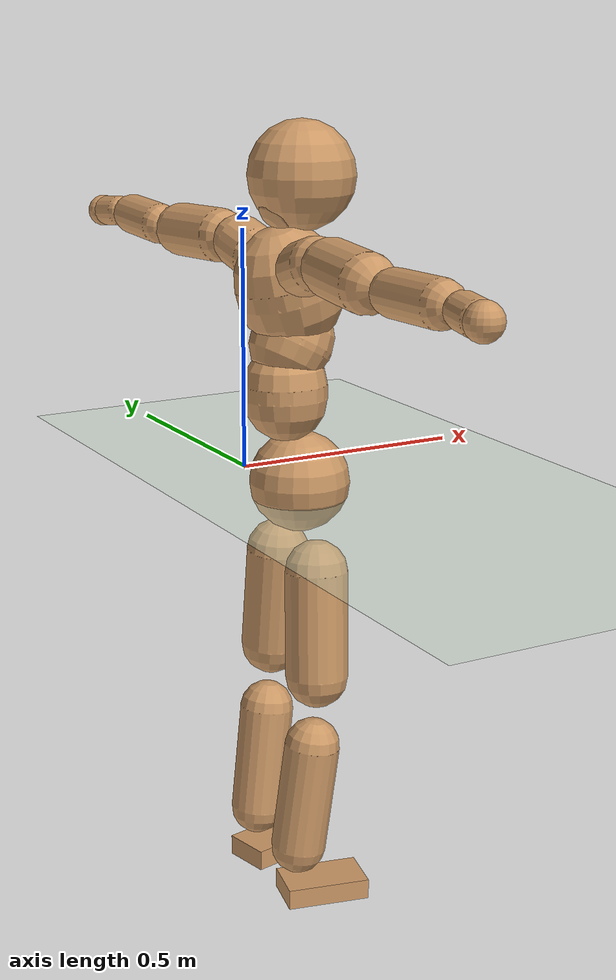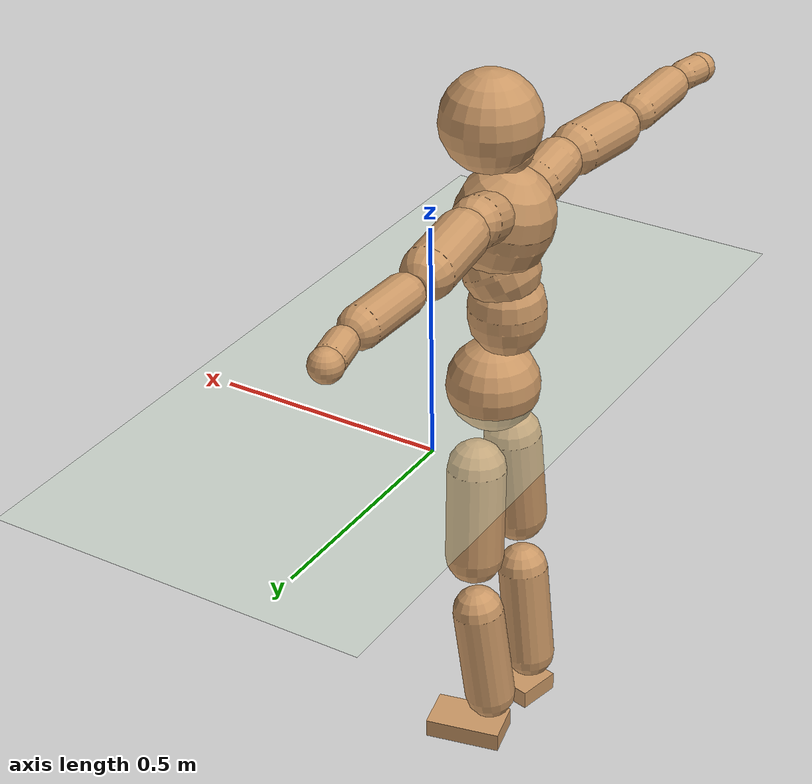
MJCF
<mujoco model="humanoid">
  <compiler coordinate="local"/>
  <default>
    <joint damping="0.0" armature="0.01" stiffness="0.0" limited="true"/>
    <geom conaffinity="1" condim="3" contype="7" margin="0.001" rgba="0.8 0.6 .4 1"/>
  </default>
  <asset>
    <texture type="skybox" builtin="gradient" rgb1=".4 .5 .6" rgb2="0 0 0" width="100" height="100"/>
    <texture builtin="flat" height="1278" mark="cross" markrgb="1 1 1" name="texgeom" random="0.01" rgb1="0.8 0.6 0.4" rgb2="0.8 0.6 0.4" type="cube" width="127"/>
    <texture builtin="checker" height="100" name="texplane" rgb1="0 0 0" rgb2="0.8 0.8 0.8" type="2d" width="100"/>
    <material name="MatPlane" reflectance="0.5" shininess="1" specular="1" texrepeat="60 60" texture="texplane"/>
    <material name="geom" texture="texgeom" texuniform="true"/>
  </asset>
  <worldbody>
    <light cutoff="100" diffuse="1 1 1" dir="-0 0 -1.3" directional="true" exponent="1" pos="0 0 1.3" specular=".1 .1 .1"/>
    <geom conaffinity="1" condim="3" name="floor" pos="0 0 0" rgba="0.8 0.9 0.8 1" size="100 100 .2" type="plane" material="MatPlane"/>
    <body name="Pelvis" pos="-0.0015 -0.2419 0.0323">
      <freejoint name="Pelvis"/>
      <geom type="sphere" contype="1" conaffinity="1" density="500" size="0.1007" pos="0.0000 0.0000 0.0000" name="Pelvis"/>
      <body name="L_Hip" pos="-0.0049 0.073 -0.0954">
        <joint name="L_Hip_x" type="hinge" pos="0 0 0" axis="1 0 0" stiffness="800" damping="80" armature="0.02" range="-180.0000 180.0000"/>
        <joint name="L_Hip_y" type="hinge" pos="0 0 0" axis="0 1 0" stiffness="800" damping="80" armature="0.02" range="-180.0000 180.0000"/>
        <joint name="L_Hip_z" type="hinge" pos="0 0 0" axis="0 0 1" stiffness="800" damping="80" armature="0.02" range="-180.0000 180.0000"/>
        <geom type="capsule" contype="1" conaffinity="1" density="500" fromto="-0.0019 0.0056 -0.0703 -0.0074 0.0223 -0.2812" size="0.0636" name="L_Hip"/>
        <body name="L_Knee" pos="-0.0093 0.0278 -0.3515">
          <joint name="L_Knee_x" type="hinge" pos="0 0 0" axis="1 0 0" stiffness="800" damping="80" armature="0.02" range="-180.0000 180.0000"/>
          <joint name="L_Knee_y" type="hinge" pos="0 0 0" axis="0 1 0" stiffness="800" damping="80" armature="0.02" range="-180.0000 180.0000"/>
          <joint name="L_Knee_z" type="hinge" pos="0 0 0" axis="0 0 1" stiffness="800" damping="80" armature="0.02" range="-180.0000 180.0000"/>
          <geom type="capsule" contype="1" conaffinity="1" density="500" fromto="-0.0090 -0.0027 -0.0746 -0.0361 -0.0108 -0.2985" size="0.056" name="L_Knee"/>
          <body name="L_Ankle" pos="-0.0452 -0.0135 -0.3731">
            <joint name="L_Ankle_x" type="hinge" pos="0 0 0" axis="1 0 0" stiffness="800" damping="80" armature="0.02" range="-180.0000 180.0000"/>
            <joint name="L_Ankle_y" type="hinge" pos="0 0 0" axis="0 1 0" stiffness="800" damping="80" armature="0.02" range="-180.0000 180.0000"/>
            <joint name="L_Ankle_z" type="hinge" pos="0 0 0" axis="0 0 1" stiffness="800" damping="80" armature="0.02" range="-180.0000 180.0000"/>
            <geom type="box" contype="1" conaffinity="1" density="500" pos="0.0586 0.0129 -0.0267" size="0.0841 0.0492 0.0212" quat="0.9941 0.0000 0.0000 0.1085" name="L_Ankle"/>
            <body name="L_Toe" pos="0.1171 0.0259 -0.0535">
              <joint name="L_Toe_x" type="hinge" pos="0 0 0" axis="1 0 0" stiffness="500" damping="50" armature="0.02" range="-180.0000 180.0000"/>
              <joint name="L_Toe_y" type="hinge" pos="0 0 0" axis="0 1 0" stiffness="500" damping="50" armature="0.02" range="-180.0000 180.0000"/>
              <joint name="L_Toe_z" type="hinge" pos="0 0 0" axis="0 0 1" stiffness="500" damping="50" armature="0.02" range="-180.0000 180.0000"/>
              <geom type="box" contype="1" conaffinity="1" density="500" pos="0.0000 0.0000 0.0261" size="0.001 0.0024 0.001" quat="0.9934 0.0000 0.0000 0.1147" name="L_Toe"/>
            </body>
          </body>
        </body>
      </body>
      <body name="R_Hip" pos="-0.0019 -0.0711 -0.0945">
        <joint name="R_Hip_x" type="hinge" pos="0 0 0" axis="1 0 0" stiffness="800" damping="80" armature="0.02" range="-180.0000 180.0000"/>
        <joint name="R_Hip_y" type="hinge" pos="0 0 0" axis="0 1 0" stiffness="800" damping="80" armature="0.02" range="-180.0000 180.0000"/>
        <joint name="R_Hip_z" type="hinge" pos="0 0 0" axis="0 0 1" stiffness="800" damping="80" armature="0.02" range="-180.0000 180.0000"/>
        <geom type="capsule" contype="1" conaffinity="1" density="500" fromto="-0.0026 -0.0064 -0.0720 -0.0105 -0.0255 -0.2879" size="0.0629" name="R_Hip"/>
        <body name="R_Knee" pos="-0.0132 -0.0318 -0.3599">
          <joint name="R_Knee_x" type="hinge" pos="0 0 0" axis="1 0 0" stiffness="800" damping="80" armature="0.02" range="-180.0000 180.0000"/>
          <joint name="R_Knee_y" type="hinge" pos="0 0 0" axis="0 1 0" stiffness="800" damping="80" armature="0.02" range="-180.0000 180.0000"/>
          <joint name="R_Knee_z" type="hinge" pos="0 0 0" axis="0 0 1" stiffness="800" damping="80" armature="0.02" range="-180.0000 180.0000"/>
          <geom type="capsule" contype="1" conaffinity="1" density="500" fromto="-0.0089 0.0030 -0.0749 -0.0357 0.0121 -0.2994" size="0.056" name="R_Knee"/>
          <body name="R_Ankle" pos="-0.0446 0.0151 -0.3743">
            <joint name="R_Ankle_x" type="hinge" pos="0 0 0" axis="1 0 0" stiffness="800" damping="80" armature="0.02" range="-180.0000 180.0000"/>
            <joint name="R_Ankle_y" type="hinge" pos="0 0 0" axis="0 1 0" stiffness="800" damping="80" armature="0.02" range="-180.0000 180.0000"/>
            <joint name="R_Ankle_z" type="hinge" pos="0 0 0" axis="0 0 1" stiffness="800" damping="80" armature="0.02" range="-180.0000 180.0000"/>
            <geom type="box" contype="1" conaffinity="1" density="500" pos="0.0607 -0.0133 -0.0227" size="0.0853 0.0495 0.021" quat="0.9942 0.0000 0.0000 -0.1075" name="R_Ankle"/>
            <body name="R_Toe" pos="0.1215 -0.0266 -0.0454">
              <joint name="R_Toe_x" type="hinge" pos="0 0 0" axis="1 0 0" stiffness="500" damping="50" armature="0.02" range="-180.0000 180.0000"/>
              <joint name="R_Toe_y" type="hinge" pos="0 0 0" axis="0 1 0" stiffness="500" damping="50" armature="0.02" range="-180.0000 180.0000"/>
              <joint name="R_Toe_z" type="hinge" pos="0 0 0" axis="0 0 1" stiffness="500" damping="50" armature="0.02" range="-180.0000 180.0000"/>
              <geom type="box" contype="1" conaffinity="1" density="500" pos="0.0000 0.0000 0.0237" size="0.001 0.0025 0.0011" quat="0.9952 0.0000 0.0000 -0.0981" name="R_Toe"/>
            </body>
          </body>
        </body>
      </body>
      <body name="Torso" pos="-0.0313 -0.0024 0.1136">
        <joint name="Torso_x" type="hinge" pos="0 0 0" axis="1 0 0" stiffness="1000" damping="100" armature="0.02" range="-180.0000 180.0000"/>
        <joint name="Torso_y" type="hinge" pos="0 0 0" axis="0 1 0" stiffness="1000" damping="100" armature="0.02" range="-180.0000 180.0000"/>
        <joint name="Torso_z" type="hinge" pos="0 0 0" axis="0 0 1" stiffness="1000" damping="100" armature="0.02" range="-180.0000 180.0000"/>
        <geom type="capsule" contype="1" conaffinity="1" density="500" fromto="-0.0000 0.0036 0.0843 -0.0000 0.0024 0.0562" size="0.0826" name="Torso"/>
        <body name="Spine" pos="-0.0001 0.006 0.1406">
          <joint name="Spine_x" type="hinge" pos="0 0 0" axis="1 0 0" stiffness="1000" damping="100" armature="0.02" range="-180.0000 180.0000"/>
          <joint name="Spine_y" type="hinge" pos="0 0 0" axis="0 1 0" stiffness="1000" damping="100" armature="0.02" range="-180.0000 180.0000"/>
          <joint name="Spine_z" type="hinge" pos="0 0 0" axis="0 0 1" stiffness="1000" damping="100" armature="0.02" range="-180.0000 180.0000"/>
          <geom type="capsule" contype="1" conaffinity="1" density="500" fromto="0.0183 0.0007 0.0338 0.0122 0.0004 0.0225" size="0.0818" name="Spine"/>
          <body name="Chest" pos="0.0304 0.0011 0.0564">
            <joint name="Chest_x" type="hinge" pos="0 0 0" axis="1 0 0" stiffness="1000" damping="100" armature="0.02" range="-180.0000 180.0000"/>
            <joint name="Chest_y" type="hinge" pos="0 0 0" axis="0 1 0" stiffness="1000" damping="100" armature="0.02" range="-180.0000 180.0000"/>
            <joint name="Chest_z" type="hinge" pos="0 0 0" axis="0 0 1" stiffness="1000" damping="100" armature="0.02" range="-180.0000 180.0000"/>
            <geom type="capsule" contype="1" conaffinity="1" density="500" fromto="-0.0260 -0.0008 0.0934 -0.0173 -0.0006 0.0623" size="0.1038" name="Chest"/>
            <body name="Neck" pos="-0.0474 -0.0015 0.2197">
              <joint name="Neck_x" type="hinge" pos="0 0 0" axis="1 0 0" stiffness="500" damping="50" armature="0.02" range="-180.0000 180.0000"/>
              <joint name="Neck_y" type="hinge" pos="0 0 0" axis="0 1 0" stiffness="500" damping="50" armature="0.02" range="-180.0000 180.0000"/>
              <joint name="Neck_z" type="hinge" pos="0 0 0" axis="0 0 1" stiffness="500" damping="50" armature="0.02" range="-180.0000 180.0000"/>
              <geom type="capsule" contype="1" conaffinity="1" density="500" fromto="0.0110 0.0009 0.0134 0.0440 0.0035 0.0535" size="0.0452" name="Neck"/>
              <body name="Head" pos="0.055 0.0044 0.0669">
                <joint name="Head_x" type="hinge" pos="0 0 0" axis="1 0 0" stiffness="500" damping="50" armature="0.02" range="-180.0000 180.0000"/>
                <joint name="Head_y" type="hinge" pos="0 0 0" axis="0 1 0" stiffness="500" damping="50" armature="0.02" range="-180.0000 180.0000"/>
                <joint name="Head_z" type="hinge" pos="0 0 0" axis="0 0 1" stiffness="500" damping="50" armature="0.02" range="-180.0000 180.0000"/>
                <geom type="sphere" contype="1" conaffinity="1" density="500" size="0.1053" pos="0.0000 0.0000 0.0000" name="Head"/>
              </body>
            </body>
            <body name="L_Thorax" pos="-0.0388 0.0799 0.125">
              <joint name="L_Thorax_x" type="hinge" pos="0 0 0" axis="1 0 0" stiffness="500" damping="50" armature="0.02" range="-180.0000 180.0000"/>
              <joint name="L_Thorax_y" type="hinge" pos="0 0 0" axis="0 1 0" stiffness="500" damping="50" armature="0.02" range="-180.0000 180.0000"/>
              <joint name="L_Thorax_z" type="hinge" pos="0 0 0" axis="0 0 1" stiffness="500" damping="50" armature="0.02" range="-180.0000 180.0000"/>
              <geom type="capsule" contype="1" conaffinity="1" density="500" fromto="-0.0022 0.0181 0.0053 -0.0088 0.0723 0.0213" size="0.0535" name="L_Thorax"/>
              <body name="L_Shoulder" pos="-0.011 0.0904 0.0267">
                <joint name="L_Shoulder_x" type="hinge" pos="0 0 0" axis="1 0 0" stiffness="500" damping="50" armature="0.02" range="-720.0000 720.0000"/>
                <joint name="L_Shoulder_y" type="hinge" pos="0 0 0" axis="0 1 0" stiffness="500" damping="50" armature="0.02" range="-720.0000 720.0000"/>
                <joint name="L_Shoulder_z" type="hinge" pos="0 0 0" axis="0 0 1" stiffness="500" damping="50" armature="0.02" range="-720.0000 720.0000"/>
                <geom type="capsule" contype="1" conaffinity="1" density="500" fromto="-0.0056 0.0493 -0.0016 -0.0223 0.1971 -0.0063" size="0.0539" name="L_Shoulder"/>
                <body name="L_Elbow" pos="-0.0279 0.2464 -0.0079">
                  <joint name="L_Elbow_x" type="hinge" pos="0 0 0" axis="1 0 0" stiffness="500" damping="50" armature="0.02" range="-720.0000 720.0000"/>
                  <joint name="L_Elbow_y" type="hinge" pos="0 0 0" axis="0 1 0" stiffness="500" damping="50" armature="0.02" range="-720.0000 720.0000"/>
                  <joint name="L_Elbow_z" type="hinge" pos="0 0 0" axis="0 0 1" stiffness="500" damping="50" armature="0.02" range="-720.0000 720.0000"/>
                  <geom type="capsule" contype="1" conaffinity="1" density="500" fromto="-0.0001 0.0471 0.0015 -0.0005 0.1882 0.0061" size="0.0422" name="L_Elbow"/>
                  <body name="L_Wrist" pos="-0.0006 0.2353 0.0077">
                    <joint name="L_Wrist_x" type="hinge" pos="0 0 0" axis="1 0 0" stiffness="300" damping="30" armature="0.02" range="-180.0000 180.0000"/>
                    <joint name="L_Wrist_y" type="hinge" pos="0 0 0" axis="0 1 0" stiffness="300" damping="30" armature="0.02" range="-180.0000 180.0000"/>
                    <joint name="L_Wrist_z" type="hinge" pos="0 0 0" axis="0 0 1" stiffness="300" damping="30" armature="0.02" range="-180.0000 180.0000"/>
                    <geom type="capsule" contype="1" conaffinity="1" density="500" fromto="-0.0029 0.0166 -0.0015 -0.0117 0.0665 -0.0062" size="0.0321" name="L_Wrist"/>
                    <body name="L_Hand" pos="-0.0147 0.0832 -0.0077">
                      <joint name="L_Hand_x" type="hinge" pos="0 0 0" axis="1 0 0" stiffness="300" damping="30" armature="0.02" range="-180.0000 180.0000"/>
                      <joint name="L_Hand_y" type="hinge" pos="0 0 0" axis="0 1 0" stiffness="300" damping="30" armature="0.02" range="-180.0000 180.0000"/>
                      <joint name="L_Hand_z" type="hinge" pos="0 0 0" axis="0 0 1" stiffness="300" damping="30" armature="0.02" range="-180.0000 180.0000"/>
                      <geom type="sphere" contype="1" conaffinity="1" density="500" size="0.0335" pos="0.0000 0.0000 0.0000" name="L_Hand"/>
                    </body>
                  </body>
                </body>
              </body>
            </body>
            <body name="R_Thorax" pos="-0.0437 -0.0827 0.1223">
              <joint name="R_Thorax_x" type="hinge" pos="0 0 0" axis="1 0 0" stiffness="500" damping="50" armature="0.02" range="-180.0000 180.0000"/>
              <joint name="R_Thorax_y" type="hinge" pos="0 0 0" axis="0 1 0" stiffness="500" damping="50" armature="0.02" range="-180.0000 180.0000"/>
              <joint name="R_Thorax_z" type="hinge" pos="0 0 0" axis="0 0 1" stiffness="500" damping="50" armature="0.02" range="-180.0000 180.0000"/>
              <geom type="capsule" contype="1" conaffinity="1" density="500" fromto="-0.0021 -0.0193 0.0056 -0.0085 -0.0771 0.0225" size="0.0527" name="R_Thorax"/>
              <body name="R_Shoulder" pos="-0.0107 -0.0964 0.0282">
                <joint name="R_Shoulder_x" type="hinge" pos="0 0 0" axis="1 0 0" stiffness="500" damping="50" armature="0.02" range="-720.0000 720.0000"/>
                <joint name="R_Shoulder_y" type="hinge" pos="0 0 0" axis="0 1 0" stiffness="500" damping="50" armature="0.02" range="-720.0000 720.0000"/>
                <joint name="R_Shoulder_z" type="hinge" pos="0 0 0" axis="0 0 1" stiffness="500" damping="50" armature="0.02" range="-720.0000 720.0000"/>
                <geom type="capsule" contype="1" conaffinity="1" density="500" fromto="-0.0046 -0.0483 -0.0018 -0.0185 -0.1933 -0.0071" size="0.0553" name="R_Shoulder"/>
                <body name="R_Elbow" pos="-0.0231 -0.2416 -0.0089">
                  <joint name="R_Elbow_x" type="hinge" pos="0 0 0" axis="1 0 0" stiffness="500" damping="50" armature="0.02" range="-720.0000 720.0000"/>
                  <joint name="R_Elbow_y" type="hinge" pos="0 0 0" axis="0 1 0" stiffness="500" damping="50" armature="0.02" range="-720.0000 720.0000"/>
                  <joint name="R_Elbow_z" type="hinge" pos="0 0 0" axis="0 0 1" stiffness="500" damping="50" armature="0.02" range="-720.0000 720.0000"/>
                  <geom type="capsule" contype="1" conaffinity="1" density="500" fromto="-0.0009 -0.0485 0.0016 -0.0036 -0.1939 0.0064" size="0.0429" name="R_Elbow"/>
                  <body name="R_Wrist" pos="-0.0045 -0.2423 0.008">
                    <joint name="R_Wrist_x" type="hinge" pos="0 0 0" axis="1 0 0" stiffness="300" damping="30" armature="0.02" range="-180.0000 180.0000"/>
                    <joint name="R_Wrist_y" type="hinge" pos="0 0 0" axis="0 1 0" stiffness="300" damping="30" armature="0.02" range="-180.0000 180.0000"/>
                    <joint name="R_Wrist_z" type="hinge" pos="0 0 0" axis="0 0 1" stiffness="300" damping="30" armature="0.02" range="-180.0000 180.0000"/>
                    <geom type="capsule" contype="1" conaffinity="1" density="500" fromto="-0.0020 -0.0169 -0.0012 -0.0082 -0.0674 -0.0048" size="0.0331" name="R_Wrist"/>
                    <body name="R_Hand" pos="-0.0102 -0.0843 -0.006">
                      <joint name="R_Hand_x" type="hinge" pos="0 0 0" axis="1 0 0" stiffness="300" damping="30" armature="0.02" range="-180.0000 180.0000"/>
                      <joint name="R_Hand_y" type="hinge" pos="0 0 0" axis="0 1 0" stiffness="300" damping="30" armature="0.02" range="-180.0000 180.0000"/>
                      <joint name="R_Hand_z" type="hinge" pos="0 0 0" axis="0 0 1" stiffness="300" damping="30" armature="0.02" range="-180.0000 180.0000"/>
                      <geom type="sphere" contype="1" conaffinity="1" density="500" size="0.0341" pos="0.0000 0.0000 0.0000" name="R_Hand"/>
                    </body>
                  </body>
                </body>
              </body>
            </body>
          </body>
        </body>
      </body>
    </body>
  </worldbody>
  <actuator>
    <motor name="L_Hip_x" joint="L_Hip_x" gear="500"/>
    <motor name="L_Hip_y" joint="L_Hip_y" gear="500"/>
    <motor name="L_Hip_z" joint="L_Hip_z" gear="500"/>
    <motor name="L_Knee_x" joint="L_Knee_x" gear="500"/>
    <motor name="L_Knee_y" joint="L_Knee_y" gear="500"/>
    <motor name="L_Knee_z" joint="L_Knee_z" gear="500"/>
    <motor name="L_Ankle_x" joint="L_Ankle_x" gear="500"/>
    <motor name="L_Ankle_y" joint="L_Ankle_y" gear="500"/>
    <motor name="L_Ankle_z" joint="L_Ankle_z" gear="500"/>
    <motor name="L_Toe_x" joint="L_Toe_x" gear="500"/>
    <motor name="L_Toe_y" joint="L_Toe_y" gear="500"/>
    <motor name="L_Toe_z" joint="L_Toe_z" gear="500"/>
    <motor name="R_Hip_x" joint="R_Hip_x" gear="500"/>
    <motor name="R_Hip_y" joint="R_Hip_y" gear="500"/>
    <motor name="R_Hip_z" joint="R_Hip_z" gear="500"/>
    <motor name="R_Knee_x" joint="R_Knee_x" gear="500"/>
    <motor name="R_Knee_y" joint="R_Knee_y" gear="500"/>
    <motor name="R_Knee_z" joint="R_Knee_z" gear="500"/>
    <motor name="R_Ankle_x" joint="R_Ankle_x" gear="500"/>
    <motor name="R_Ankle_y" joint="R_Ankle_y" gear="500"/>
    <motor name="R_Ankle_z" joint="R_Ankle_z" gear="500"/>
    <motor name="R_Toe_x" joint="R_Toe_x" gear="500"/>
    <motor name="R_Toe_y" joint="R_Toe_y" gear="500"/>
    <motor name="R_Toe_z" joint="R_Toe_z" gear="500"/>
    <motor name="Torso_x" joint="Torso_x" gear="500"/>
    <motor name="Torso_y" joint="Torso_y" gear="500"/>
    <motor name="Torso_z" joint="Torso_z" gear="500"/>
    <motor name="Spine_x" joint="Spine_x" gear="500"/>
    <motor name="Spine_y" joint="Spine_y" gear="500"/>
    <motor name="Spine_z" joint="Spine_z" gear="500"/>
    <motor name="Chest_x" joint="Chest_x" gear="500"/>
    <motor name="Chest_y" joint="Chest_y" gear="500"/>
    <motor name="Chest_z" joint="Chest_z" gear="500"/>
    <motor name="Neck_x" joint="Neck_x" gear="500"/>
    <motor name="Neck_y" joint="Neck_y" gear="500"/>
    <motor name="Neck_z" joint="Neck_z" gear="500"/>
    <motor name="Head_x" joint="Head_x" gear="500"/>
    <motor name="Head_y" joint="Head_y" gear="500"/>
    <motor name="Head_z" joint="Head_z" gear="500"/>
    <motor name="L_Thorax_x" joint="L_Thorax_x" gear="500"/>
    <motor name="L_Thorax_y" joint="L_Thorax_y" gear="500"/>
    <motor name="L_Thorax_z" joint="L_Thorax_z" gear="500"/>
    <motor name="L_Shoulder_x" joint="L_Shoulder_x" gear="500"/>
    <motor name="L_Shoulder_y" joint="L_Shoulder_y" gear="500"/>
    <motor name="L_Shoulder_z" joint="L_Shoulder_z" gear="500"/>
    <motor name="L_Elbow_x" joint="L_Elbow_x" gear="500"/>
    <motor name="L_Elbow_y" joint="L_Elbow_y" gear="500"/>
    <motor name="L_Elbow_z" joint="L_Elbow_z" gear="500"/>
    <motor name="L_Wrist_x" joint="L_Wrist_x" gear="500"/>
    <motor name="L_Wrist_y" joint="L_Wrist_y" gear="500"/>
    <motor name="L_Wrist_z" joint="L_Wrist_z" gear="500"/>
    <motor name="L_Hand_x" joint="L_Hand_x" gear="500"/>
    <motor name="L_Hand_y" joint="L_Hand_y" gear="500"/>
    <motor name="L_Hand_z" joint="L_Hand_z" gear="500"/>
    <motor name="R_Thorax_x" joint="R_Thorax_x" gear="500"/>
    <motor name="R_Thorax_y" joint="R_Thorax_y" gear="500"/>
    <motor name="R_Thorax_z" joint="R_Thorax_z" gear="500"/>
    <motor name="R_Shoulder_x" joint="R_Shoulder_x" gear="500"/>
    <motor name="R_Shoulder_y" joint="R_Shoulder_y" gear="500"/>
    <motor name="R_Shoulder_z" joint="R_Shoulder_z" gear="500"/>
    <motor name="R_Elbow_x" joint="R_Elbow_x" gear="500"/>
    <motor name="R_Elbow_y" joint="R_Elbow_y" gear="500"/>
    <motor name="R_Elbow_z" joint="R_Elbow_z" gear="500"/>
    <motor name="R_Wrist_x" joint="R_Wrist_x" gear="500"/>
    <motor name="R_Wrist_y" joint="R_Wrist_y" gear="500"/>
    <motor name="R_Wrist_z" joint="R_Wrist_z" gear="500"/>
    <motor name="R_Hand_x" joint="R_Hand_x" gear="500"/>
    <motor name="R_Hand_y" joint="R_Hand_y" gear="500"/>
    <motor name="R_Hand_z" joint="R_Hand_z" gear="500"/>
  </actuator>
  <contact>
    <exclude body1="Torso" body2="Chest"/>
    <exclude body1="Head" body2="Chest"/>
    <exclude body1="R_Knee" body2="R_Toe"/>
    <exclude body1="R_Knee" body2="L_Ankle"/>
    <exclude body1="R_Knee" body2="L_Toe"/>
    <exclude body1="L_Knee" body2="L_Toe"/>
    <exclude body1="L_Knee" body2="R_Ankle"/>
    <exclude body1="L_Knee" body2="R_Toe"/>
    <exclude body1="L_Shoulder" body2="Chest"/>
    <exclude body1="R_Shoulder" body2="Chest"/>
  </contact>
  <sensor/>
  <size njmax="700" nconmax="700"/>
</mujoco>
